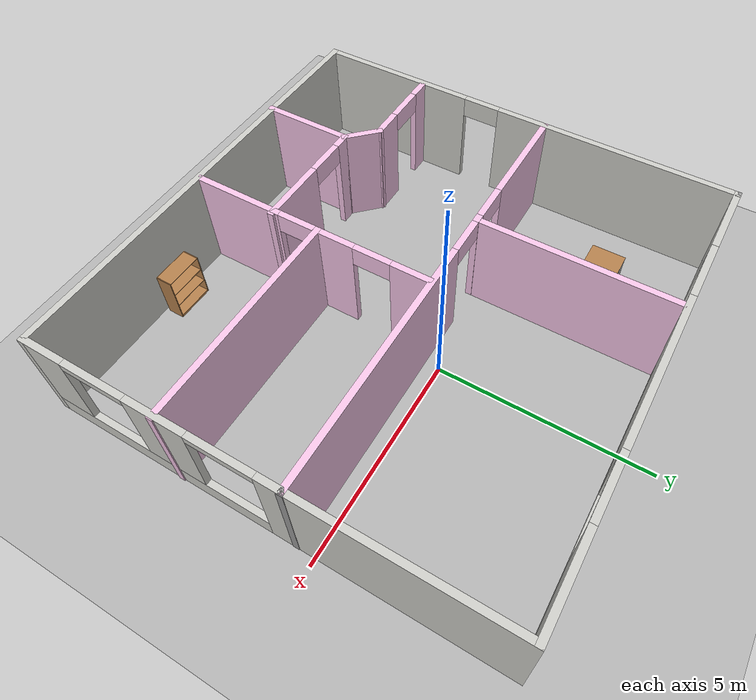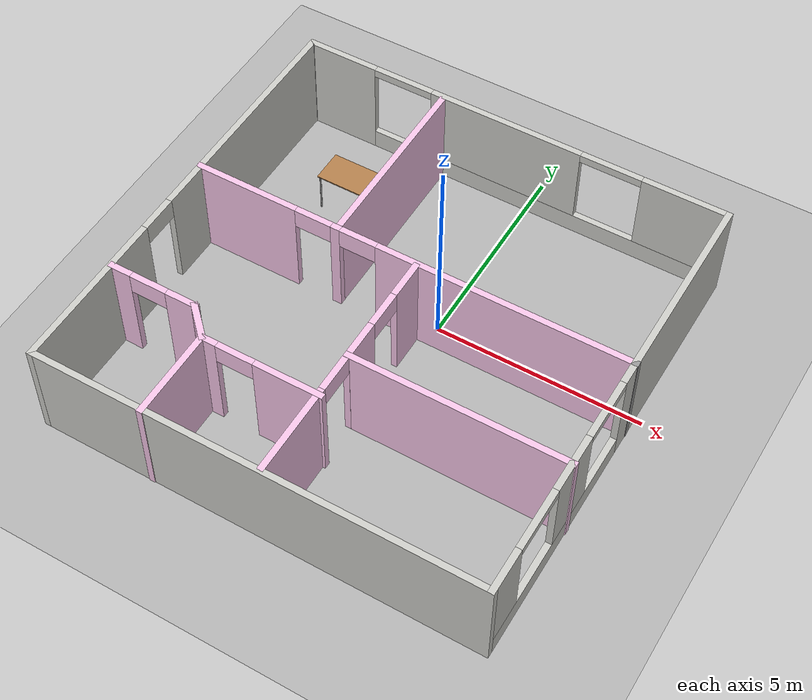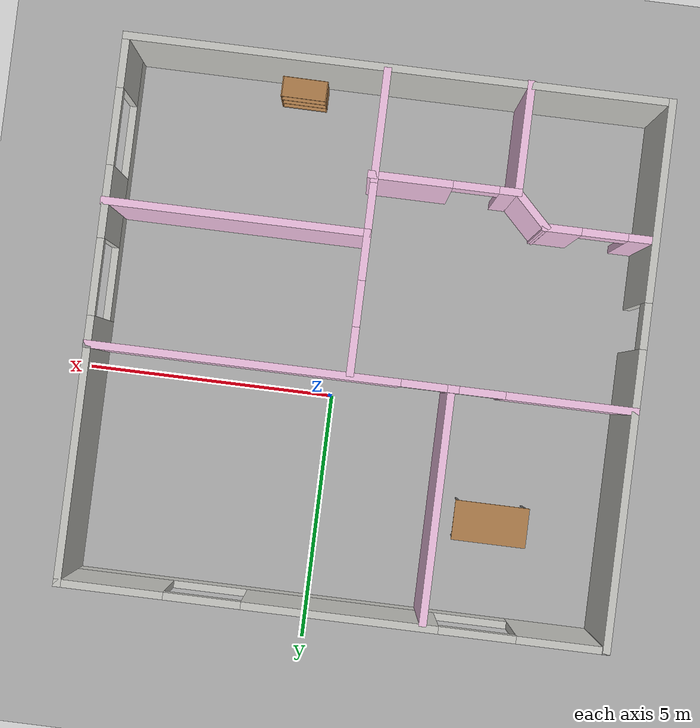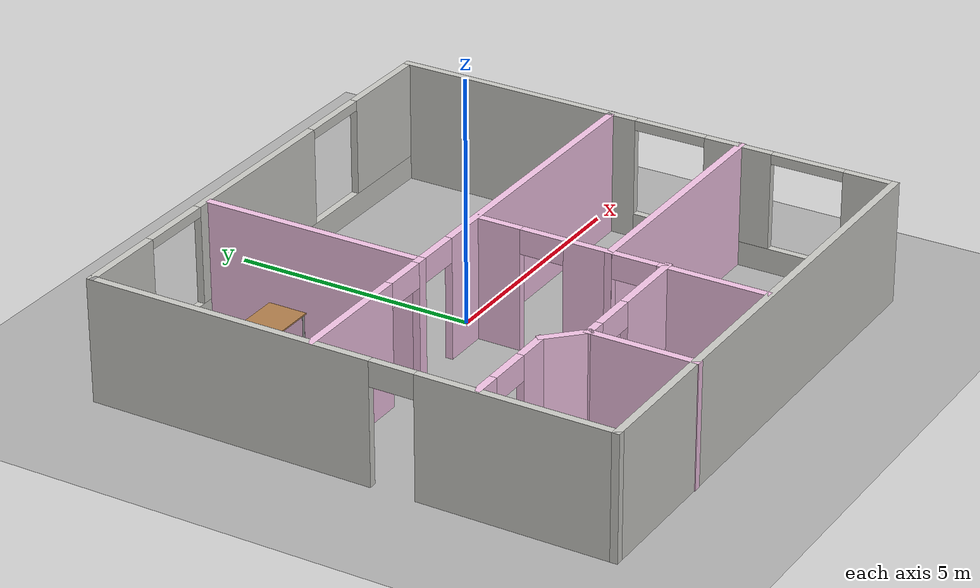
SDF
<sdf version="1.10">
 <world name="default">
  <gravity>0 0 -9.8000000000000007</gravity>
  <magnetic_field>5.5644999999999998e-06 2.2875799999999999e-05 -4.2388400000000002e-05</magnetic_field>
  <atmosphere type="adiabatic"/>
  <physics type="ode">
   <max_step_size>0.001</max_step_size>
   <real_time_factor>1</real_time_factor>
   <real_time_update_rate>1000</real_time_update_rate>
  </physics>
  <scene>
   <ambient>0.400000006 0.400000006 0.400000006 1</ambient>
   <background>0.699999988 0.699999988 0.699999988 1</background>
   <shadows>true</shadows>
  </scene>
  <model name="myworld2">
   <pose>-0.540829 -1.11453 0 0 0 0</pose>
   <link name="Wall_0">
    <pose>-0.011532000000000001 5.3081300000000002 0 0 0 0</pose>
    <visual name="Wall_0_Visual_0">
     <pose>-4.4636500000000003 0 1.25 0 0 0</pose>
     <geometry><box><size>1.8226899999999999 0.14999999999999999 2.5</size></box></geometry>
     <material>
      <script><uri>file://media/materials/scripts/gazebo.material</uri><name>Gazebo/CeilingTiled</name></script>
      <ambient>0.960784018 0.643136978 0.792156994 1</ambient>
     </material>
     <meta><layer>0</layer></meta>
    </visual>
    <collision name="Wall_0_Collision_0">
     <geometry><box><size>1.8226899999999999 0.14999999999999999 2.5</size></box></geometry>
     <pose>-4.4636500000000003 0 1.25 0 0 0</pose>
    </collision>
    <visual name="Wall_0_Visual_1">
     <pose>0.91134599999999999 0 0.25 0 0 0</pose>
     <geometry><box><size>8.9273100000000003 0.14999999999999999 0.5</size></box></geometry>
     <material>
      <script><uri>file://media/materials/scripts/gazebo.material</uri><name>Gazebo/CeilingTiled</name></script>
      <ambient>0.960784018 0.643136978 0.792156994 1</ambient>
     </material>
     <meta><layer>0</layer></meta>
    </visual>
    <collision name="Wall_0_Collision_1">
     <geometry><box><size>8.9273100000000003 0.14999999999999999 0.5</size></box></geometry>
     <pose>0.91134599999999999 0 0.25 0 0 0</pose>
    </collision>
    <visual name="Wall_0_Visual_2">
     <pose>-0.146311 0 1.5 0 0 0</pose>
     <geometry><box><size>3.8119900000000002 0.14999999999999999 2</size></box></geometry>
     <material>
      <script><uri>file://media/materials/scripts/gazebo.material</uri><name>Gazebo/CeilingTiled</name></script>
      <ambient>0.960784018 0.643136978 0.792156994 1</ambient>
     </material>
     <meta><layer>0</layer></meta>
    </visual>
    <collision name="Wall_0_Collision_2">
     <geometry><box><size>3.8119900000000002 0.14999999999999999 2</size></box></geometry>
     <pose>-0.146311 0 1.5 0 0 0</pose>
    </collision>
    <visual name="Wall_0_Visual_3">
     <pose>4.3173399999999997 0 1.5 0 0 0</pose>
     <geometry><box><size>2.11531 0.14999999999999999 2</size></box></geometry>
     <material>
      <script><uri>file://media/materials/scripts/gazebo.material</uri><name>Gazebo/CeilingTiled</name></script>
      <ambient>0.960784018 0.643136978 0.792156994 1</ambient>
     </material>
     <meta><layer>0</layer></meta>
    </visual>
    <collision name="Wall_0_Collision_3">
     <geometry><box><size>2.11531 0.14999999999999999 2</size></box></geometry>
     <pose>4.3173399999999997 0 1.5 0 0 0</pose>
    </collision>
    <visual name="Wall_0_Visual_4">
     <pose>-2.8023099999999999 0 2.3999999999999999 0 0 0</pose>
     <geometry><box><size>1.5 0.14999999999999999 0.20000000000000001</size></box></geometry>
     <material>
      <script><uri>file://media/materials/scripts/gazebo.material</uri><name>Gazebo/CeilingTiled</name></script>
      <ambient>0.960784018 0.643136978 0.792156994 1</ambient>
     </material>
     <meta><layer>0</layer></meta>
    </visual>
    <collision name="Wall_0_Collision_4">
     <geometry><box><size>1.5 0.14999999999999999 0.20000000000000001</size></box></geometry>
     <pose>-2.8023099999999999 0 2.3999999999999999 0 0 0</pose>
    </collision>
    <visual name="Wall_0_Visual_5">
     <pose>2.50969 0 2.3999999999999999 0 0 0</pose>
     <geometry><box><size>1.5 0.14999999999999999 0.20000000000000001</size></box></geometry>
     <material>
      <script><uri>file://media/materials/scripts/gazebo.material</uri><name>Gazebo/CeilingTiled</name></script>
      <ambient>0.960784018 0.643136978 0.792156994 1</ambient>
     </material>
     <meta><layer>0</layer></meta>
    </visual>
    <collision name="Wall_0_Collision_5">
     <geometry><box><size>1.5 0.14999999999999999 0.20000000000000001</size></box></geometry>
     <pose>2.50969 0 2.3999999999999999 0 0 0</pose>
    </collision>
    <inertial>
     <mass>1</mass>
     <inertia><ixx>1</ixx><ixy>0</ixy><ixz>0</ixz><iyy>1</iyy><iyz>0</iyz><izz>1</izz></inertia>
    </inertial>
   </link>
   <link name="Wall_1">
    <pose>5.2884700000000002 0.0081309999999999993 0 0 0 -1.5708</pose>
    <visual name="Wall_1_Visual_0">
     <pose>-2.7574800000000002 0 1.25 0 0 0</pose>
     <geometry><box><size>5.2350300000000001 0.14999999999999999 2.5</size></box></geometry>
     <material>
      <script><uri>file://media/materials/scripts/gazebo.material</uri><name>Gazebo/CeilingTiled</name></script>
      <ambient>0.960784018 0.643136978 0.792156994 1</ambient>
     </material>
     <meta><layer>0</layer></meta>
    </visual>
    <collision name="Wall_1_Collision_0">
     <geometry><box><size>5.2350300000000001 0.14999999999999999 2.5</size></box></geometry>
     <pose>-2.7574800000000002 0 1.25 0 0 0</pose>
    </collision>
    <visual name="Wall_1_Visual_1">
     <pose>2.6175199999999998 0 0.25 0 0 0</pose>
     <geometry><box><size>5.5149699999999999 0.14999999999999999 0.5</size></box></geometry>
     <material>
      <script><uri>file://media/materials/scripts/gazebo.material</uri><name>Gazebo/CeilingTiled</name></script>
      <ambient>0.960784018 0.643136978 0.792156994 1</ambient>
     </material>
     <meta><layer>0</layer></meta>
    </visual>
    <collision name="Wall_1_Collision_1">
     <geometry><box><size>5.5149699999999999 0.14999999999999999 0.5</size></box></geometry>
     <pose>2.6175199999999998 0 0.25 0 0 0</pose>
    </collision>
    <visual name="Wall_1_Visual_2">
     <pose>2.06995 0 1.5 0 0 0</pose>
     <geometry><box><size>1.41984 0.14999999999999999 2</size></box></geometry>
     <material>
      <script><uri>file://media/materials/scripts/gazebo.material</uri><name>Gazebo/CeilingTiled</name></script>
      <ambient>0.960784018 0.643136978 0.792156994 1</ambient>
     </material>
     <meta><layer>0</layer></meta>
    </visual>
    <collision name="Wall_1_Collision_2">
     <geometry><box><size>1.41984 0.14999999999999999 2</size></box></geometry>
     <pose>2.06995 0 1.5 0 0 0</pose>
    </collision>
    <visual name="Wall_1_Visual_3">
     <pose>4.8274400000000002 0 1.5 0 0 0</pose>
     <geometry><box><size>1.0951299999999999 0.14999999999999999 2</size></box></geometry>
     <material>
      <script><uri>file://media/materials/scripts/gazebo.material</uri><name>Gazebo/CeilingTiled</name></script>
      <ambient>0.960784018 0.643136978 0.792156994 1</ambient>
     </material>
     <meta><layer>0</layer></meta>
    </visual>
    <collision name="Wall_1_Collision_3">
     <geometry><box><size>1.0951299999999999 0.14999999999999999 2</size></box></geometry>
     <pose>4.8274400000000002 0 1.5 0 0 0</pose>
    </collision>
    <visual name="Wall_1_Visual_4">
     <pose>0.61003200000000002 0 2.3999999999999999 0 0 0</pose>
     <geometry><box><size>1.5 0.14999999999999999 0.20000000000000001</size></box></geometry>
     <material>
      <script><uri>file://media/materials/scripts/gazebo.material</uri><name>Gazebo/CeilingTiled</name></script>
      <ambient>0.960784018 0.643136978 0.792156994 1</ambient>
     </material>
     <meta><layer>0</layer></meta>
    </visual>
    <collision name="Wall_1_Collision_4">
     <geometry><box><size>1.5 0.14999999999999999 0.20000000000000001</size></box></geometry>
     <pose>0.61003200000000002 0 2.3999999999999999 0 0 0</pose>
    </collision>
    <visual name="Wall_1_Visual_5">
     <pose>3.5298699999999998 0 2.3999999999999999 0 0 0</pose>
     <geometry><box><size>1.5 0.14999999999999999 0.20000000000000001</size></box></geometry>
     <material>
      <script><uri>file://media/materials/scripts/gazebo.material</uri><name>Gazebo/CeilingTiled</name></script>
      <ambient>0.960784018 0.643136978 0.792156994 1</ambient>
     </material>
     <meta><layer>0</layer></meta>
    </visual>
    <collision name="Wall_1_Collision_5">
     <geometry><box><size>1.5 0.14999999999999999 0.20000000000000001</size></box></geometry>
     <pose>3.5298699999999998 0 2.3999999999999999 0 0 0</pose>
    </collision>
    <inertial>
     <mass>1</mass>
     <inertia><ixx>1</ixx><ixy>0</ixy><ixz>0</ixz><iyy>1</iyy><iyz>0</iyz><izz>1</izz></inertia>
    </inertial>
   </link>
   <link name="Wall_10">
    <pose>0.211534 -2.2956400000000001 0 0 0 -1.5708</pose>
    <visual name="Wall_10_Visual_0">
     <pose>-2.5190999999999999 0 1.25 0 0 0</pose>
     <geometry><box><size>0.96179300000000001 0.14999999999999999 2.5</size></box></geometry>
     <material>
      <script><uri>file://media/materials/scripts/gazebo.material</uri><name>Gazebo/Grey</name></script>
      <ambient>0.960784018 0.772548974 0.905882001 1</ambient>
     </material>
     <meta><layer>0</layer></meta>
    </visual>
    <collision name="Wall_10_Collision_0">
     <geometry><box><size>0.96179300000000001 0.14999999999999999 2.5</size></box></geometry>
     <pose>-2.5190999999999999 0 1.25 0 0 0</pose>
    </collision>
    <visual name="Wall_10_Visual_1">
     <pose>-0.63837999999999995 0 1.25 0 0 0</pose>
     <geometry><box><size>0.99965300000000001 0.14999999999999999 2.5</size></box></geometry>
     <material>
      <script><uri>file://media/materials/scripts/gazebo.material</uri><name>Gazebo/Grey</name></script>
      <ambient>0.960784018 0.772548974 0.905882001 1</ambient>
     </material>
     <meta><layer>0</layer></meta>
    </visual>
    <collision name="Wall_10_Collision_1">
     <geometry><box><size>0.99965300000000001 0.14999999999999999 2.5</size></box></geometry>
     <pose>-0.63837999999999995 0 1.25 0 0 0</pose>
    </collision>
    <visual name="Wall_10_Visual_2">
     <pose>1.8807199999999999 0 1.25 0 0 0</pose>
     <geometry><box><size>2.23855 0.14999999999999999 2.5</size></box></geometry>
     <material>
      <script><uri>file://media/materials/scripts/gazebo.material</uri><name>Gazebo/Grey</name></script>
      <ambient>0.960784018 0.772548974 0.905882001 1</ambient>
     </material>
     <meta><layer>0</layer></meta>
    </visual>
    <collision name="Wall_10_Collision_2">
     <geometry><box><size>2.23855 0.14999999999999999 2.5</size></box></geometry>
     <pose>1.8807199999999999 0 1.25 0 0 0</pose>
    </collision>
    <visual name="Wall_10_Visual_3">
     <pose>-1.5882099999999999 0 2.25 0 0 0</pose>
     <geometry><box><size>0.90000000000000002 0.14999999999999999 0.5</size></box></geometry>
     <material>
      <script><uri>file://media/materials/scripts/gazebo.material</uri><name>Gazebo/Grey</name></script>
      <ambient>0.960784018 0.772548974 0.905882001 1</ambient>
     </material>
     <meta><layer>0</layer></meta>
    </visual>
    <collision name="Wall_10_Collision_3">
     <geometry><box><size>0.90000000000000002 0.14999999999999999 0.5</size></box></geometry>
     <pose>-1.5882099999999999 0 2.25 0 0 0</pose>
    </collision>
    <visual name="Wall_10_Visual_4">
     <pose>0.311446 0 2.25 0 0 0</pose>
     <geometry><box><size>0.90000000000000002 0.14999999999999999 0.5</size></box></geometry>
     <material>
      <script><uri>file://media/materials/scripts/gazebo.material</uri><name>Gazebo/Grey</name></script>
      <ambient>0.960784018 0.772548974 0.905882001 1</ambient>
     </material>
     <meta><layer>0</layer></meta>
    </visual>
    <collision name="Wall_10_Collision_4">
     <geometry><box><size>0.90000000000000002 0.14999999999999999 0.5</size></box></geometry>
     <pose>0.311446 0 2.25 0 0 0</pose>
    </collision>
    <inertial>
     <mass>1</mass>
     <inertia><ixx>1</ixx><ixy>0</ixy><ixz>0</ixz><iyy>1</iyy><iyz>0</iyz><izz>1</izz></inertia>
    </inertial>
   </link>
   <link name="Wall_12">
    <collision name="Wall_12_Collision">
     <geometry><box><size>5.25 0.14999999999999999 2.5</size></box></geometry>
     <pose>0 0 1.25 0 0 0</pose>
    </collision>
    <visual name="Wall_12_Visual">
     <pose>0 0 1.25 0 0 0</pose>
     <geometry><box><size>5.25 0.14999999999999999 2.5</size></box></geometry>
     <material>
      <script><uri>file://media/materials/scripts/gazebo.material</uri><name>Gazebo/Grey</name></script>
      <ambient>0.960784018 0.772548974 0.905882001 1</ambient>
     </material>
     <meta><layer>0</layer></meta>
    </visual>
    <pose>2.76153 -2.0794100000000002 0 0 0 0</pose>
    <inertial>
     <mass>1</mass>
     <inertia><ixx>1</ixx><ixy>0</ixy><ixz>0</ixz><iyy>1</iyy><iyz>0</iyz><izz>1</izz></inertia>
    </inertial>
   </link>
   <link name="Wall_14">
    <pose>-4.2263500000000001 -2.6070899999999999 0 0 0 0</pose>
    <visual name="Wall_14_Visual_0">
     <pose>-0.83758699999999997 0 1.25 0 0 0</pose>
     <geometry><box><size>0.57482699999999998 0.14999999999999999 2.5</size></box></geometry>
     <material>
      <script><uri>file://media/materials/scripts/gazebo.material</uri><name>Gazebo/Grey</name></script>
      <ambient>0.960784018 0.772548974 0.905882001 1</ambient>
     </material>
     <meta><layer>0</layer></meta>
    </visual>
    <collision name="Wall_14_Collision_0">
     <geometry><box><size>0.57482699999999998 0.14999999999999999 2.5</size></box></geometry>
     <pose>-0.83758699999999997 0 1.25 0 0 0</pose>
    </collision>
    <visual name="Wall_14_Visual_1">
     <pose>0.73741299999999999 0 1.25 0 0 0</pose>
     <geometry><box><size>0.775173 0.14999999999999999 2.5</size></box></geometry>
     <material>
      <script><uri>file://media/materials/scripts/gazebo.material</uri><name>Gazebo/Grey</name></script>
      <ambient>0.960784018 0.772548974 0.905882001 1</ambient>
     </material>
     <meta><layer>0</layer></meta>
    </visual>
    <collision name="Wall_14_Collision_1">
     <geometry><box><size>0.775173 0.14999999999999999 2.5</size></box></geometry>
     <pose>0.73741299999999999 0 1.25 0 0 0</pose>
    </collision>
    <visual name="Wall_14_Visual_2">
     <pose>-0.100173 0 2.25 0 0 0</pose>
     <geometry><box><size>0.90000000000000002 0.14999999999999999 0.5</size></box></geometry>
     <material>
      <script><uri>file://media/materials/scripts/gazebo.material</uri><name>Gazebo/Grey</name></script>
      <ambient>0.960784018 0.772548974 0.905882001 1</ambient>
     </material>
     <meta><layer>0</layer></meta>
    </visual>
    <collision name="Wall_14_Collision_2">
     <geometry><box><size>0.90000000000000002 0.14999999999999999 0.5</size></box></geometry>
     <pose>-0.100173 0 2.25 0 0 0</pose>
    </collision>
    <inertial>
     <mass>1</mass>
     <inertia><ixx>1</ixx><ixy>0</ixy><ixz>0</ixz><iyy>1</iyy><iyz>0</iyz><izz>1</izz></inertia>
    </inertial>
   </link>
   <link name="Wall_15">
    <collision name="Wall_15_Collision">
     <geometry><box><size>1 0.14999999999999999 2.5</size></box></geometry>
     <pose>0 0 1.25 0 0 0</pose>
    </collision>
    <visual name="Wall_15_Visual">
     <pose>0 0 1.25 0 0 0</pose>
     <geometry><box><size>1 0.14999999999999999 2.5</size></box></geometry>
     <material>
      <script><uri>file://media/materials/scripts/gazebo.material</uri><name>Gazebo/Grey</name></script>
      <ambient>0.960784018 0.772548974 0.905882001 1</ambient>
     </material>
     <meta><layer>0</layer></meta>
    </visual>
    <pose>-2.8758300000000001 -2.90761 0 0 0 -0.78539799999999982</pose>
    <inertial>
     <mass>1</mass>
     <inertia><ixx>1</ixx><ixy>0</ixy><ixz>0</ixz><iyy>1</iyy><iyz>0</iyz><izz>1</izz></inertia>
    </inertial>
   </link>
   <link name="Wall_16">
    <pose>-1.1503099999999999 -3.2081300000000001 0 0 0 0</pose>
    <visual name="Wall_16_Visual_0">
     <pose>-1.27908 0 1.25 0 0 0</pose>
     <geometry><box><size>0.44183600000000001 0.14999999999999999 2.5</size></box></geometry>
     <material>
      <script><uri>file://media/materials/scripts/gazebo.material</uri><name>Gazebo/Grey</name></script>
      <ambient>0.960784018 0.772548974 0.905882001 1</ambient>
     </material>
     <meta><layer>0</layer></meta>
    </visual>
    <collision name="Wall_16_Collision_0">
     <geometry><box><size>0.44183600000000001 0.14999999999999999 2.5</size></box></geometry>
     <pose>-1.27908 0 1.25 0 0 0</pose>
    </collision>
    <visual name="Wall_16_Visual_1">
     <pose>0.67091800000000001 0 1.25 0 0 0</pose>
     <geometry><box><size>1.6581600000000001 0.14999999999999999 2.5</size></box></geometry>
     <material>
      <script><uri>file://media/materials/scripts/gazebo.material</uri><name>Gazebo/Grey</name></script>
      <ambient>0.960784018 0.772548974 0.905882001 1</ambient>
     </material>
     <meta><layer>0</layer></meta>
    </visual>
    <collision name="Wall_16_Collision_1">
     <geometry><box><size>1.6581600000000001 0.14999999999999999 2.5</size></box></geometry>
     <pose>0.67091800000000001 0 1.25 0 0 0</pose>
    </collision>
    <visual name="Wall_16_Visual_2">
     <pose>-0.60816400000000004 0 2.25 0 0 0</pose>
     <geometry><box><size>0.90000000000000002 0.14999999999999999 0.5</size></box></geometry>
     <material>
      <script><uri>file://media/materials/scripts/gazebo.material</uri><name>Gazebo/Grey</name></script>
      <ambient>0.960784018 0.772548974 0.905882001 1</ambient>
     </material>
     <meta><layer>0</layer></meta>
    </visual>
    <collision name="Wall_16_Collision_2">
     <geometry><box><size>0.90000000000000002 0.14999999999999999 0.5</size></box></geometry>
     <pose>-0.60816400000000004 0 2.25 0 0 0</pose>
    </collision>
    <inertial>
     <mass>1</mass>
     <inertia><ixx>1</ixx><ixy>0</ixy><ixz>0</ixz><iyy>1</iyy><iyz>0</iyz><izz>1</izz></inertia>
    </inertial>
   </link>
   <link name="Wall_18">
    <collision name="Wall_18_Collision">
     <geometry><box><size>2.25 0.14999999999999999 2.5</size></box></geometry>
     <pose>0 0 1.25 0 0 0</pose>
    </collision>
    <visual name="Wall_18_Visual">
     <pose>0 0 1.25 0 0 0</pose>
     <geometry><box><size>2.25 0.14999999999999999 2.5</size></box></geometry>
     <material>
      <script><uri>file://media/materials/scripts/gazebo.material</uri><name>Gazebo/Grey</name></script>
      <ambient>0.960784018 0.772548974 0.905882001 1</ambient>
     </material>
     <meta><layer>0</layer></meta>
    </visual>
    <pose>-2.57531 -4.2581300000000004 0 0 0 -1.5708</pose>
    <inertial>
     <mass>1</mass>
     <inertia><ixx>1</ixx><ixy>0</ixy><ixz>0</ixz><iyy>1</iyy><iyz>0</iyz><izz>1</izz></inertia>
    </inertial>
   </link>
   <link name="Wall_2">
    <collision name="Wall_2_Collision">
     <geometry><box><size>10.75 0.14999999999999999 2.5</size></box></geometry>
     <pose>0 0 1.25 0 0 0</pose>
    </collision>
    <visual name="Wall_2_Visual">
     <pose>0 0 1.25 0 0 0</pose>
     <geometry><box><size>10.75 0.14999999999999999 2.5</size></box></geometry>
     <material>
      <script><uri>file://media/materials/scripts/gazebo.material</uri><name>Gazebo/CeilingTiled</name></script>
      <ambient>0.960784018 0.643136978 0.792156994 1</ambient>
     </material>
     <meta><layer>0</layer></meta>
    </visual>
    <pose>-0.011532000000000001 -5.2918700000000003 0 0 0 3.1415899999999999</pose>
    <inertial>
     <mass>1</mass>
     <inertia><ixx>1</ixx><ixy>0</ixy><ixz>0</ixz><iyy>1</iyy><iyz>0</iyz><izz>1</izz></inertia>
    </inertial>
   </link>
   <link name="Wall_20">
    <collision name="Wall_20_Collision">
     <geometry><box><size>4.5 0.14999999999999999 2.5</size></box></geometry>
     <pose>0 0 1.25 0 0 0</pose>
    </collision>
    <visual name="Wall_20_Visual">
     <pose>0 0 1.25 0 0 0</pose>
     <geometry><box><size>4.5 0.14999999999999999 2.5</size></box></geometry>
     <material>
      <script><uri>file://media/materials/scripts/gazebo.material</uri><name>Gazebo/Grey</name></script>
      <ambient>0.960784018 0.772548974 0.905882001 1</ambient>
     </material>
     <meta><layer>0</layer></meta>
    </visual>
    <pose>-1.75848 3.02759 0 0 0 -1.5708</pose>
    <inertial>
     <mass>1</mass>
     <inertia><ixx>1</ixx><ixy>0</ixy><ixz>0</ixz><iyy>1</iyy><iyz>0</iyz><izz>1</izz></inertia>
    </inertial>
   </link>
   <link name="Wall_3">
    <pose>-5.3115300000000003 0.0081309999999999993 0 0 0 1.5708</pose>
    <visual name="Wall_3_Visual_0">
     <pose>-3.3934099999999998 0 1.25 0 0 0</pose>
     <geometry><box><size>3.9631799999999999 0.14999999999999999 2.5</size></box></geometry>
     <material>
      <script><uri>file://media/materials/scripts/gazebo.material</uri><name>Gazebo/CeilingTiled</name></script>
      <ambient>0.960784018 0.643136978 0.792156994 1</ambient>
     </material>
     <meta><layer>0</layer></meta>
    </visual>
    <collision name="Wall_3_Collision_0">
     <geometry><box><size>3.9631799999999999 0.14999999999999999 2.5</size></box></geometry>
     <pose>-3.3934099999999998 0 1.25 0 0 0</pose>
    </collision>
    <visual name="Wall_3_Visual_1">
     <pose>2.4315899999999999 0 1.25 0 0 0</pose>
     <geometry><box><size>5.8868200000000002 0.14999999999999999 2.5</size></box></geometry>
     <material>
      <script><uri>file://media/materials/scripts/gazebo.material</uri><name>Gazebo/CeilingTiled</name></script>
      <ambient>0.960784018 0.643136978 0.792156994 1</ambient>
     </material>
     <meta><layer>0</layer></meta>
    </visual>
    <collision name="Wall_3_Collision_1">
     <geometry><box><size>5.8868200000000002 0.14999999999999999 2.5</size></box></geometry>
     <pose>2.4315899999999999 0 1.25 0 0 0</pose>
    </collision>
    <visual name="Wall_3_Visual_2">
     <pose>-0.96182000000000001 0 2.25 0 0 0</pose>
     <geometry><box><size>0.90000000000000002 0.14999999999999999 0.5</size></box></geometry>
     <material>
      <script><uri>file://media/materials/scripts/gazebo.material</uri><name>Gazebo/CeilingTiled</name></script>
      <ambient>0.960784018 0.643136978 0.792156994 1</ambient>
     </material>
     <meta><layer>0</layer></meta>
    </visual>
    <collision name="Wall_3_Collision_2">
     <geometry><box><size>0.90000000000000002 0.14999999999999999 0.5</size></box></geometry>
     <pose>-0.96182000000000001 0 2.25 0 0 0</pose>
    </collision>
    <inertial>
     <mass>1</mass>
     <inertia><ixx>1</ixx><ixy>0</ixy><ixz>0</ixz><iyy>1</iyy><iyz>0</iyz><izz>1</izz></inertia>
    </inertial>
   </link>
   <link name="Wall_4">
    <collision name="Wall_4_Collision">
     <geometry><box><size>0.16 0.14999999999999999 2.5</size></box></geometry>
     <pose>0 0 1.25 0 0 0</pose>
    </collision>
    <visual name="Wall_4_Visual">
     <pose>0 0 1.25 0 0 0</pose>
     <geometry><box><size>0.16 0.14999999999999999 2.5</size></box></geometry>
     <material>
      <script><uri>file://media/materials/scripts/gazebo.material</uri><name>Gazebo/Grey</name></script>
      <ambient>1 1 1 1</ambient>
     </material>
     <meta><layer>0</layer></meta>
    </visual>
    <pose>-5.3065300000000004 5.3081300000000002 0 0 0 0</pose>
    <inertial>
     <mass>1</mass>
     <inertia><ixx>1</ixx><ixy>0</ixy><ixz>0</ixz><iyy>1</iyy><iyz>0</iyz><izz>1</izz></inertia>
    </inertial>
   </link>
   <link name="Wall_6">
    <pose>-0.011171 0.69953399999999999 0 0 0 0</pose>
    <visual name="Wall_6_Visual_0">
     <pose>-4.0849900000000003 0 1.25 0 0 0</pose>
     <geometry><box><size>2.5800200000000002 0.14999999999999999 2.5</size></box></geometry>
     <material>
      <script><uri>file://media/materials/scripts/gazebo.material</uri><name>Gazebo/Grey</name></script>
      <ambient>0.960784018 0.772548974 0.905882001 1</ambient>
     </material>
     <meta><layer>0</layer></meta>
    </visual>
    <collision name="Wall_6_Collision_0">
     <geometry><box><size>2.5800200000000002 0.14999999999999999 2.5</size></box></geometry>
     <pose>-4.0849900000000003 0 1.25 0 0 0</pose>
    </collision>
    <visual name="Wall_6_Visual_1">
     <pose>-1.7821199999999999 0 1.25 0 0 0</pose>
     <geometry><box><size>0.22572 0.14999999999999999 2.5</size></box></geometry>
     <material>
      <script><uri>file://media/materials/scripts/gazebo.material</uri><name>Gazebo/Grey</name></script>
      <ambient>0.960784018 0.772548974 0.905882001 1</ambient>
     </material>
     <meta><layer>0</layer></meta>
    </visual>
    <collision name="Wall_6_Collision_1">
     <geometry><box><size>0.22572 0.14999999999999999 2.5</size></box></geometry>
     <pose>-1.7821199999999999 0 1.25 0 0 0</pose>
    </collision>
    <visual name="Wall_6_Visual_2">
     <pose>2.30287 0 1.25 0 0 0</pose>
     <geometry><box><size>6.1442600000000001 0.14999999999999999 2.5</size></box></geometry>
     <material>
      <script><uri>file://media/materials/scripts/gazebo.material</uri><name>Gazebo/Grey</name></script>
      <ambient>0.960784018 0.772548974 0.905882001 1</ambient>
     </material>
     <meta><layer>0</layer></meta>
    </visual>
    <collision name="Wall_6_Collision_2">
     <geometry><box><size>6.1442600000000001 0.14999999999999999 2.5</size></box></geometry>
     <pose>2.30287 0 1.25 0 0 0</pose>
    </collision>
    <visual name="Wall_6_Visual_3">
     <pose>-2.3449800000000001 0 2.25 0 0 0</pose>
     <geometry><box><size>0.90000000000000002 0.14999999999999999 0.5</size></box></geometry>
     <material>
      <script><uri>file://media/materials/scripts/gazebo.material</uri><name>Gazebo/Grey</name></script>
      <ambient>0.960784018 0.772548974 0.905882001 1</ambient>
     </material>
     <meta><layer>0</layer></meta>
    </visual>
    <collision name="Wall_6_Collision_3">
     <geometry><box><size>0.90000000000000002 0.14999999999999999 0.5</size></box></geometry>
     <pose>-2.3449800000000001 0 2.25 0 0 0</pose>
    </collision>
    <visual name="Wall_6_Visual_4">
     <pose>-1.21926 0 2.25 0 0 0</pose>
     <geometry><box><size>0.90000000000000002 0.14999999999999999 0.5</size></box></geometry>
     <material>
      <script><uri>file://media/materials/scripts/gazebo.material</uri><name>Gazebo/Grey</name></script>
      <ambient>0.960784018 0.772548974 0.905882001 1</ambient>
     </material>
     <meta><layer>0</layer></meta>
    </visual>
    <collision name="Wall_6_Collision_4">
     <geometry><box><size>0.90000000000000002 0.14999999999999999 0.5</size></box></geometry>
     <pose>-1.21926 0 2.25 0 0 0</pose>
    </collision>
    <inertial>
     <mass>1</mass>
     <inertia><ixx>1</ixx><ixy>0</ixy><ixz>0</ixz><iyy>1</iyy><iyz>0</iyz><izz>1</izz></inertia>
    </inertial>
   </link>
   <link name="Wall_7">
    <collision name="Wall_7_Collision">
     <geometry><box><size>0.16 0.14999999999999999 2.5</size></box></geometry>
     <pose>0 0 1.25 0 0 0</pose>
    </collision>
    <visual name="Wall_7_Visual">
     <pose>0 0 1.25 0 0 0</pose>
     <geometry><box><size>0.16 0.14999999999999999 2.5</size></box></geometry>
     <material>
      <script><uri>file://media/materials/scripts/gazebo.material</uri><name>Gazebo/Grey</name></script>
      <ambient>1 1 1 1</ambient>
     </material>
     <meta><layer>0</layer></meta>
    </visual>
    <pose>5.2936500000000004 0.69962400000000002 0 0 0 0.018544999999999992</pose>
    <inertial>
     <mass>1</mass>
     <inertia><ixx>1</ixx><ixy>0</ixy><ixz>0</ixz><iyy>1</iyy><iyz>0</iyz><izz>1</izz></inertia>
    </inertial>
   </link>
   <static>true</static>
  </model>
  <model name="ground_plane">
   <static>true</static>
   <link name="link">
    <collision name="collision">
     <geometry><plane><normal>0 0 1</normal><size>100 100</size></plane></geometry>
     <surface><friction><ode><mu>100</mu><mu2>50</mu2></ode></friction></surface>
    </collision>
    <visual name="visual">
     <cast_shadows>false</cast_shadows>
     <geometry><plane><normal>0 0 1</normal><size>100 100</size></plane></geometry>
     <material>
      <ambient>0.300000012 0.300000012 0.300000012 1</ambient>
      <diffuse>0.699999988 0.699999988 0.699999988 1</diffuse>
      <specular>0.00999999978 0.00999999978 0.00999999978 1</specular>
     </material>
    </visual>
    <inertial>
     <mass>1</mass>
     <inertia><ixx>1</ixx><ixy>0</ixy><ixz>0</ixz><iyy>1</iyy><iyz>0</iyz><izz>1</izz></inertia>
    </inertial>
   </link>
   <pose>-6.4492900000000004 -0.52652600000000005 0 0 0 0</pose>
  </model>
  <model name="Table">
   <static>true</static>
   <link name="link">
    <collision name="surface">
     <pose>0 0 1 0 0 0</pose>
     <geometry><box><size>1.5 0.80000000000000004 0.029999999999999999</size></box></geometry>
     <surface><friction><ode><mu>0.59999999999999998</mu><mu2>0.59999999999999998</mu2></ode></friction></surface>
    </collision>
    <visual name="visual1">
     <pose>0 0 1 0 0 0</pose>
     <geometry><box><size>1.5 0.80000000000000004 0.029999999999999999</size></box></geometry>
     <material>
      <diffuse>1 1 1 1</diffuse>
      <script><uri>file://media/materials/scripts/gazebo.material</uri><name>Gazebo/Wood</name></script>
      <pbr>
       <metal>
        <albedo_map>https://fuel.gazebosim.org/1.0/openrobotics/models/table/4/files/Table_Diffuse.jpg</albedo_map>
       </metal>
      </pbr>
     </material>
    </visual>
    <collision name="front_left_leg">
     <pose>0.68000000000000005 0.38 0.5 0 0 0</pose>
     <geometry><cylinder><radius>0.02</radius><length>1</length></cylinder></geometry>
    </collision>
    <visual name="front_left_leg">
     <pose>0.68000000000000005 0.38 0.5 0 0 0</pose>
     <geometry><cylinder><radius>0.02</radius><length>1</length></cylinder></geometry>
     <material>
      <diffuse>0.5 0.5 0.5 1</diffuse>
      <script><uri>file://media/materials/scripts/gazebo.material</uri><name>Gazebo/Grey</name></script>
     </material>
    </visual>
    <collision name="front_right_leg">
     <pose>0.68000000000000005 -0.38 0.5 0 0 0</pose>
     <geometry><cylinder><radius>0.02</radius><length>1</length></cylinder></geometry>
    </collision>
    <visual name="front_right_leg">
     <pose>0.68000000000000005 -0.38 0.5 0 0 0</pose>
     <geometry><cylinder><radius>0.02</radius><length>1</length></cylinder></geometry>
     <material>
      <diffuse>0.5 0.5 0.5 1</diffuse>
      <script><uri>file://media/materials/scripts/gazebo.material</uri><name>Gazebo/Grey</name></script>
     </material>
    </visual>
    <collision name="back_right_leg">
     <pose>-0.68000000000000005 -0.38 0.5 0 0 0</pose>
     <geometry><cylinder><radius>0.02</radius><length>1</length></cylinder></geometry>
    </collision>
    <visual name="back_right_leg">
     <pose>-0.68000000000000005 -0.38 0.5 0 0 0</pose>
     <geometry><cylinder><radius>0.02</radius><length>1</length></cylinder></geometry>
     <material>
      <diffuse>0.5 0.5 0.5 1</diffuse>
      <script><uri>file://media/materials/scripts/gazebo.material</uri><name>Gazebo/Grey</name></script>
     </material>
    </visual>
    <collision name="back_left_leg">
     <pose>-0.68000000000000005 0.38 0.5 0 0 0</pose>
     <geometry><cylinder><radius>0.02</radius><length>1</length></cylinder></geometry>
    </collision>
    <visual name="back_left_leg">
     <pose>-0.68000000000000005 0.38 0.5 0 0 0</pose>
     <geometry><cylinder><radius>0.02</radius><length>1</length></cylinder></geometry>
     <material>
      <diffuse>0.5 0.5 0.5 1</diffuse>
      <script><uri>file://media/materials/scripts/gazebo.material</uri><name>Gazebo/Grey</name></script>
     </material>
    </visual>
    <inertial>
     <mass>1</mass>
     <inertia><ixx>1</ixx><ixy>0</ixy><ixz>0</ixz><iyy>1</iyy><iyz>0</iyz><izz>1</izz></inertia>
    </inertial>
   </link>
   <pose>-3.4935015798511859 2.1586648450068262 0 0 0 0</pose>
  </model>
  <model name="Bookshelf">
   <static>true</static>
   <link name="link">
    <inertial>
     <mass>1</mass>
     <inertia><ixx>1</ixx><ixy>0</ixy><ixz>0</ixz><iyy>1</iyy><iyz>0</iyz><izz>1</izz></inertia>
    </inertial>
    <collision name="back">
     <pose>0 0.0050000000000000001 0.59999999999999998 0 0 0</pose>
     <geometry><box><size>0.90000000000000002 0.01 1.2</size></box></geometry>
    </collision>
    <visual name="visual1">
     <pose>0 0.0050000000000000001 0.59999999999999998 0 0 0</pose>
     <geometry><box><size>0.90000000000000002 0.01 1.2</size></box></geometry>
     <material>
      <diffuse>1 1 1 1</diffuse>
      <script><uri>file://media/materials/scripts/gazebo.material</uri><name>Gazebo/Wood</name></script>
      <pbr>
       <metal>
        <albedo_map>https://fuel.gazebosim.org/1.0/openrobotics/models/bookshelf/4/files/bookshelf_diffuse.jpg</albedo_map>
       </metal>
      </pbr>
     </material>
    </visual>
    <collision name="left_side">
     <pose>0.45000000000000001 -0.19500000000000001 0.59999999999999998 0 0 0</pose>
     <geometry><box><size>0.02 0.40000000000000002 1.2</size></box></geometry>
    </collision>
    <visual name="visual2">
     <pose>0.45000000000000001 -0.19500000000000001 0.59999999999999998 0 0 0</pose>
     <geometry><box><size>0.02 0.40000000000000002 1.2</size></box></geometry>
     <material>
      <diffuse>1 1 1 1</diffuse>
      <script><uri>file://media/materials/scripts/gazebo.material</uri><name>Gazebo/Wood</name></script>
      <pbr>
       <metal>
        <albedo_map>https://fuel.gazebosim.org/1.0/openrobotics/models/bookshelf/4/files/bookshelf_diffuse.jpg</albedo_map>
       </metal>
      </pbr>
     </material>
    </visual>
    <collision name="right_side">
     <pose>-0.45000000000000001 -0.19500000000000001 0.59999999999999998 0 0 0</pose>
     <geometry><box><size>0.02 0.40000000000000002 1.2</size></box></geometry>
    </collision>
    <visual name="visual3">
     <pose>-0.45000000000000001 -0.19500000000000001 0.59999999999999998 0 0 0</pose>
     <geometry><box><size>0.02 0.40000000000000002 1.2</size></box></geometry>
     <material>
      <diffuse>1 1 1 1</diffuse>
      <script><uri>file://media/materials/scripts/gazebo.material</uri><name>Gazebo/Wood</name></script>
      <pbr>
       <metal>
        <albedo_map>https://fuel.gazebosim.org/1.0/openrobotics/models/bookshelf/4/files/bookshelf_diffuse.jpg</albedo_map>
       </metal>
      </pbr>
     </material>
    </visual>
    <collision name="bottom">
     <pose>0 -0.19500000000000001 0.029999999999999999 0 0 0</pose>
     <geometry><box><size>0.88 0.40000000000000002 0.059999999999999998</size></box></geometry>
    </collision>
    <visual name="visual4">
     <pose>0 -0.19500000000000001 0.029999999999999999 0 0 0</pose>
     <geometry><box><size>0.88 0.40000000000000002 0.059999999999999998</size></box></geometry>
     <material>
      <diffuse>1 1 1 1</diffuse>
      <script><uri>file://media/materials/scripts/gazebo.material</uri><name>Gazebo/Wood</name></script>
      <pbr>
       <metal>
        <albedo_map>https://fuel.gazebosim.org/1.0/openrobotics/models/bookshelf/4/files/bookshelf_diffuse.jpg</albedo_map>
       </metal>
      </pbr>
     </material>
    </visual>
    <collision name="top">
     <pose>0 -0.19500000000000001 1.1899999999999999 0 0 0</pose>
     <geometry><box><size>0.88 0.40000000000000002 0.02</size></box></geometry>
    </collision>
    <visual name="visual5">
     <pose>0 -0.19500000000000001 1.1899999999999999 0 0 0</pose>
     <geometry><box><size>0.88 0.40000000000000002 0.02</size></box></geometry>
     <material>
      <diffuse>1 1 1 1</diffuse>
      <script><uri>file://media/materials/scripts/gazebo.material</uri><name>Gazebo/Wood</name></script>
      <pbr>
       <metal>
        <albedo_map>https://fuel.gazebosim.org/1.0/openrobotics/models/bookshelf/4/files/bookshelf_diffuse.jpg</albedo_map>
       </metal>
      </pbr>
     </material>
    </visual>
    <collision name="low_shelf">
     <pose>0 -0.19500000000000001 0.42999999999999999 0 0 0</pose>
     <geometry><box><size>0.88 0.40000000000000002 0.02</size></box></geometry>
    </collision>
    <visual name="visual6">
     <pose>0 -0.19500000000000001 0.42999999999999999 0 0 0</pose>
     <geometry><box><size>0.88 0.40000000000000002 0.02</size></box></geometry>
     <material>
      <diffuse>1 1 1 1</diffuse>
      <script><uri>file://media/materials/scripts/gazebo.material</uri><name>Gazebo/Wood</name></script>
      <pbr>
       <metal>
        <albedo_map>https://fuel.gazebosim.org/1.0/openrobotics/models/bookshelf/4/files/bookshelf_diffuse.jpg</albedo_map>
       </metal>
      </pbr>
     </material>
    </visual>
    <collision name="high_shelf">
     <pose>0 -0.19500000000000001 0.80000000000000004 0 0 0</pose>
     <geometry><box><size>0.88 0.40000000000000002 0.02</size></box></geometry>
    </collision>
    <visual name="visual7">
     <pose>0 -0.19500000000000001 0.80000000000000004 0 0 0</pose>
     <geometry><box><size>0.88 0.40000000000000002 0.02</size></box></geometry>
     <material>
      <diffuse>1 1 1 1</diffuse>
      <script><uri>file://media/materials/scripts/gazebo.material</uri><name>Gazebo/Wood</name></script>
      <pbr>
       <metal>
        <albedo_map>https://fuel.gazebosim.org/1.0/openrobotics/models/bookshelf/4/files/bookshelf_diffuse.jpg</albedo_map>
       </metal>
      </pbr>
     </material>
    </visual>
   </link>
   <pose>1.2770123481750488 -6.2388501167297363 0 0 0 3.1334600001138413</pose>
  </model>
  <light name="sun" type="directional">
   <pose>1.2946500000000001 -1.85667 10 0 0 0</pose>
   <intensity>1</intensity>
   <direction>-0.5 0.10000000000000001 -0.90000000000000002</direction>
   <diffuse>0.800000012 0.800000012 0.800000012 1</diffuse>
   <specular>0.200000003 0.200000003 0.200000003 1</specular>
   <attenuation>
    <range>1000</range>
    <linear>0.0099999997764825821</linear>
    <constant>0.89999997615814209</constant>
    <quadratic>0.0010000000474974513</quadratic>
   </attenuation>
   <spot><inner_angle>0</inner_angle><outer_angle>0</outer_angle><falloff>0</falloff></spot>
  </light>
 </world>
</sdf>
